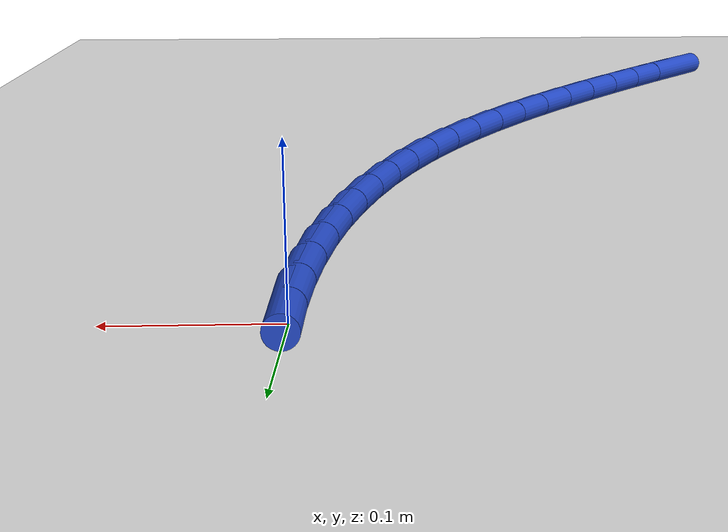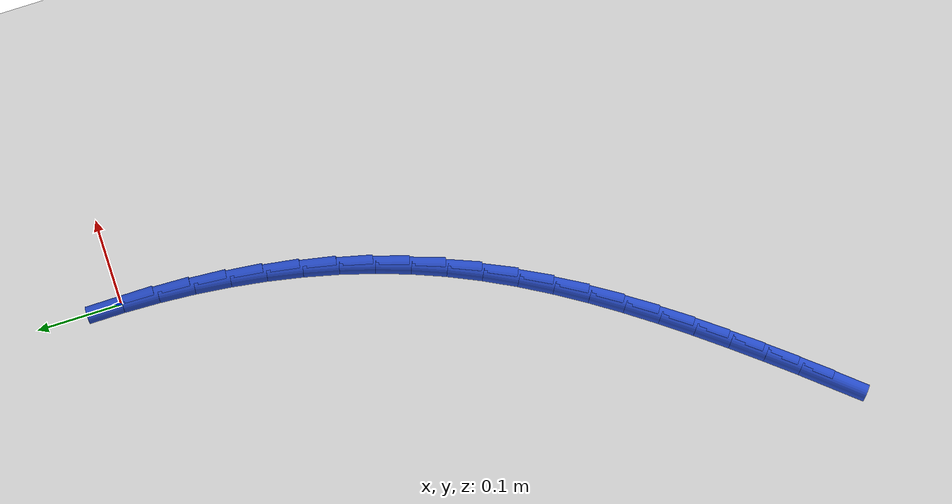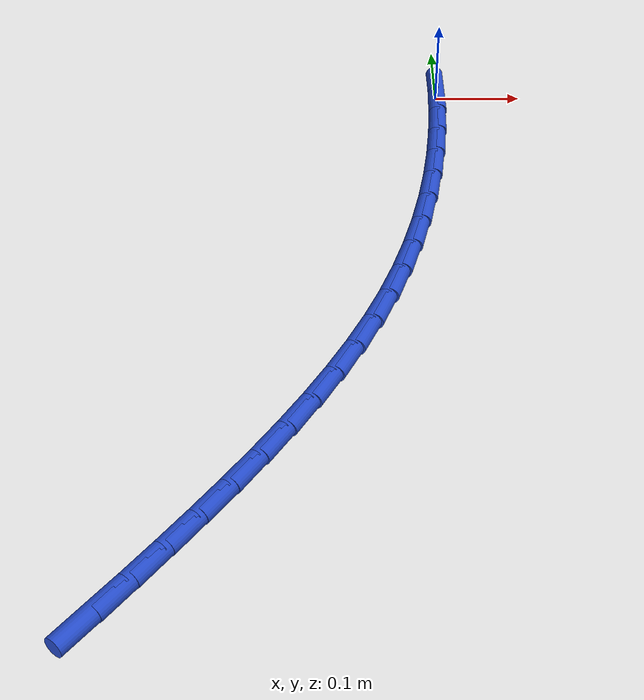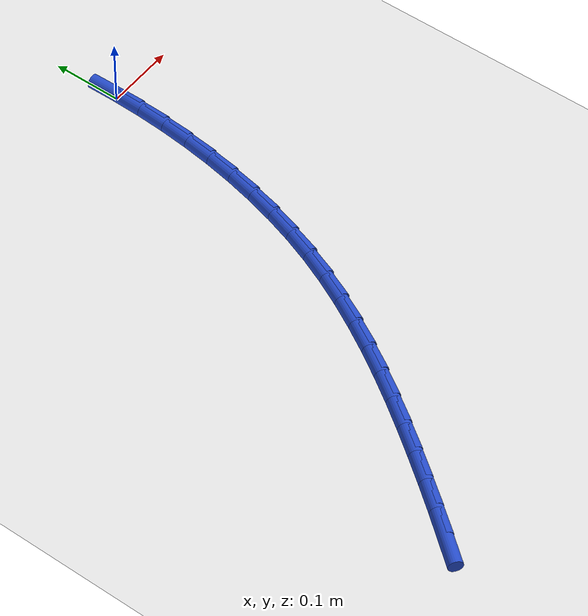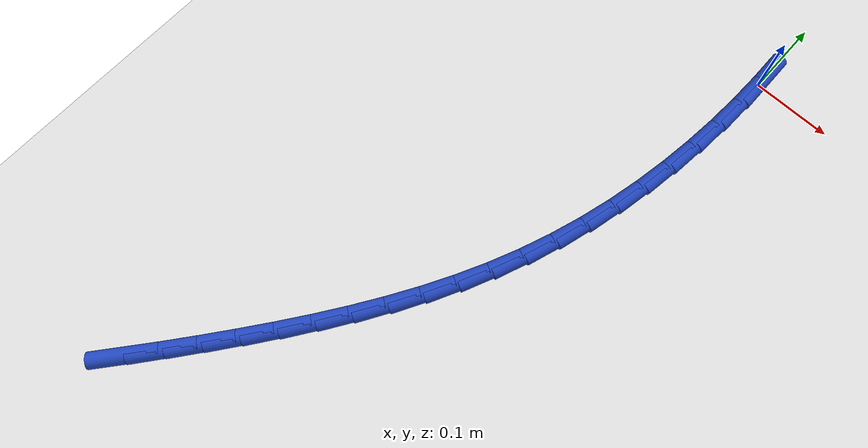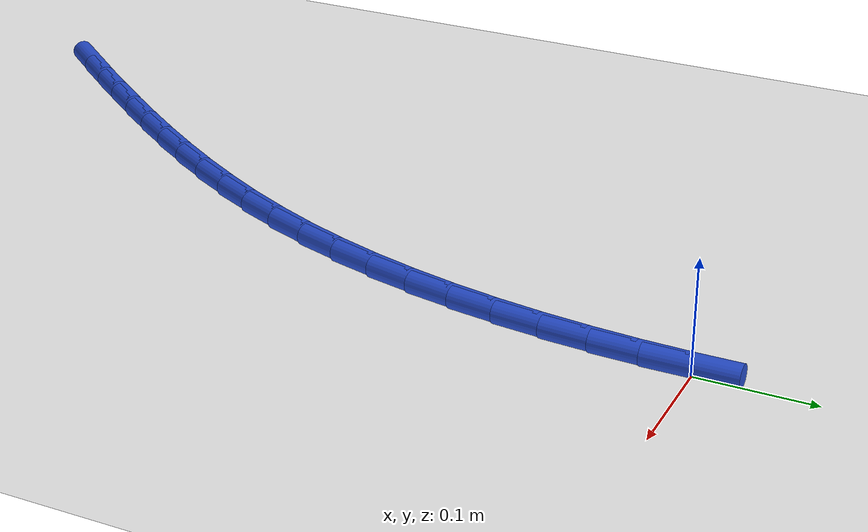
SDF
<sdf version="1.6">
 <world name="default">
  <model name="ground_plane">
   <static>1</static>
   <link name="link">
    <collision name="collision">
     <geometry><plane><normal>0 0 1</normal><size>100 100</size></plane></geometry>
     <surface><friction><ode><mu>100</mu><mu2>50</mu2></ode></friction></surface>
    </collision>
    <visual name="visual">
     <cast_shadows>0</cast_shadows>
     <geometry><plane><normal>0 0 1</normal><size>100 100</size></plane></geometry>
     <material>
      <script><uri>file://media/materials/scripts/gazebo.material</uri><name>Gazebo/WhiteGlow</name></script>
     </material>
    </visual>
   </link>
  </model>
  <model name="line">
   <link name="link_0">
    <pose>-9.540979117872439e-18 2.7755575615628914e-17 0.01 0 1.57 -1.5623964826857273</pose>
    <collision name="collision">
     <geometry><cylinder><radius>0.01</radius><length>0.08</length></cylinder></geometry>
    </collision>
    <visual name="visual">
     <material>
      <script><name>Gazebo/Blue</name><uri>file://media/materials/scripts/gazebo.material</uri></script>
     </material>
     <geometry><cylinder><radius>0.01</radius><length>0.08</length></cylinder></geometry>
    </visual>
   </link>
   <link name="link_150">
    <pose>-0.32178129520156173 -0.7493743706008839 0.01 0 1.57 0.8835898894317481</pose>
    <collision name="collision">
     <geometry><cylinder><radius>0.01</radius><length>0.08</length></cylinder></geometry>
    </collision>
    <visual name="visual">
     <material>
      <script><name>Gazebo/Blue</name><uri>file://media/materials/scripts/gazebo.material</uri></script>
     </material>
     <geometry><cylinder><radius>0.01</radius><length>0.08</length></cylinder></geometry>
    </visual>
   </link>
   <link name="link_151">
    <pose>-0.29471833832471617 -0.7163969220350901 0.01 0 1.57 0.9004460528788547</pose>
    <collision name="collision">
     <geometry><cylinder><radius>0.01</radius><length>0.08</length></cylinder></geometry>
    </collision>
    <visual name="visual">
     <material>
      <script><name>Gazebo/Blue</name><uri>file://media/materials/scripts/gazebo.material</uri></script>
     </material>
     <geometry><cylinder><radius>0.01</radius><length>0.08</length></cylinder></geometry>
    </visual>
   </link>
   <link name="link_152">
    <pose>-0.26823126471768904 -0.6829884251102676 0.01 0 1.57 0.9131514819049315</pose>
    <collision name="collision">
     <geometry><cylinder><radius>0.01</radius><length>0.08</length></cylinder></geometry>
    </collision>
    <visual name="visual">
     <material>
      <script><name>Gazebo/Blue</name><uri>file://media/materials/scripts/gazebo.material</uri></script>
     </material>
     <geometry><cylinder><radius>0.01</radius><length>0.08</length></cylinder></geometry>
    </visual>
   </link>
   <link name="link_153">
    <pose>-0.24226271877513392 -0.649365134818778 0.01 0 1.57 0.9271708702379099</pose>
    <collision name="collision">
     <geometry><cylinder><radius>0.01</radius><length>0.08</length></cylinder></geometry>
    </collision>
    <visual name="visual">
     <material>
      <script><name>Gazebo/Blue</name><uri>file://media/materials/scripts/gazebo.material</uri></script>
     </material>
     <geometry><cylinder><radius>0.01</radius><length>0.08</length></cylinder></geometry>
    </visual>
   </link>
   <link name="link_154">
    <pose>-0.2168955019512213 -0.6155509397030151 0.01 0 1.57 0.9455721928672199</pose>
    <collision name="collision">
     <geometry><cylinder><radius>0.01</radius><length>0.08</length></cylinder></geometry>
    </collision>
    <visual name="visual">
     <material>
      <script><name>Gazebo/Blue</name><uri>file://media/materials/scripts/gazebo.material</uri></script>
     </material>
     <geometry><cylinder><radius>0.01</radius><length>0.08</length></cylinder></geometry>
    </visual>
   </link>
   <link name="link_155">
    <pose>-0.19229007047317329 -0.5814631466385807 0.01 0 1.57 0.9684837760847869</pose>
    <collision name="collision">
     <geometry><cylinder><radius>0.01</radius><length>0.08</length></cylinder></geometry>
    </collision>
    <visual name="visual">
     <material>
      <script><name>Gazebo/Blue</name><uri>file://media/materials/scripts/gazebo.material</uri></script>
     </material>
     <geometry><cylinder><radius>0.01</radius><length>0.08</length></cylinder></geometry>
    </visual>
   </link>
   <link name="link_156">
    <pose>-0.16860770559058816 -0.5470179301526532 0.01 0 1.57 0.9959982139500039</pose>
    <collision name="collision">
     <geometry><cylinder><radius>0.01</radius><length>0.08</length></cylinder></geometry>
    </collision>
    <visual name="visual">
     <material>
      <script><name>Gazebo/Blue</name><uri>file://media/materials/scripts/gazebo.material</uri></script>
     </material>
     <geometry><cylinder><radius>0.01</radius><length>0.08</length></cylinder></geometry>
    </visual>
   </link>
   <link name="link_157">
    <pose>-0.14600968855306376 -0.5121314647724109 0.01 0 1.57 1.0281898206058169</pose>
    <collision name="collision">
     <geometry><cylinder><radius>0.01</radius><length>0.08</length></cylinder></geometry>
    </collision>
    <visual name="visual">
     <material>
      <script><name>Gazebo/Blue</name><uri>file://media/materials/scripts/gazebo.material</uri></script>
     </material>
     <geometry><cylinder><radius>0.01</radius><length>0.08</length></cylinder></geometry>
    </visual>
   </link>
   <link name="link_158">
    <pose>-0.12465730061019774 -0.4767199250250315 0.01 0 1.57 1.0650964619308423</pose>
    <collision name="collision">
     <geometry><cylinder><radius>0.01</radius><length>0.08</length></cylinder></geometry>
    </collision>
    <visual name="visual">
     <material>
      <script><name>Gazebo/Blue</name><uri>file://media/materials/scripts/gazebo.material</uri></script>
     </material>
     <geometry><cylinder><radius>0.01</radius><length>0.08</length></cylinder></geometry>
    </visual>
   </link>
   <link name="link_159">
    <pose>-0.10471182301158896 -0.44069948543769477 0.01 0 1.57 1.106697677753667</pose>
    <collision name="collision">
     <geometry><cylinder><radius>0.01</radius><length>0.08</length></cylinder></geometry>
    </collision>
    <visual name="visual">
     <material>
      <script><name>Gazebo/Blue</name><uri>file://media/materials/scripts/gazebo.material</uri></script>
     </material>
     <geometry><cylinder><radius>0.01</radius><length>0.08</length></cylinder></geometry>
    </visual>
   </link>
   <link name="link_160">
    <pose>-0.08633453700683504 -0.40398632053757855 0.01 0 1.57 1.1528901771721627</pose>
    <collision name="collision">
     <geometry><cylinder><radius>0.01</radius><length>0.08</length></cylinder></geometry>
    </collision>
    <visual name="visual">
     <material>
      <script><name>Gazebo/Blue</name><uri>file://media/materials/scripts/gazebo.material</uri></script>
     </material>
     <geometry><cylinder><radius>0.01</radius><length>0.08</length></cylinder></geometry>
    </visual>
   </link>
   <link name="link_161">
    <pose>-0.06968672384553398 -0.36649660485186103 0.01 0 1.57 1.2027975334644274</pose>
    <collision name="collision">
     <geometry><cylinder><radius>0.01</radius><length>0.08</length></cylinder></geometry>
    </collision>
    <visual name="visual">
     <material>
      <script><name>Gazebo/Blue</name><uri>file://media/materials/scripts/gazebo.material</uri></script>
     </material>
     <geometry><cylinder><radius>0.01</radius><length>0.08</length></cylinder></geometry>
    </visual>
   </link>
   <link name="link_162">
    <pose>-0.054907336047297146 -0.32816460709446305 0.01 0 1.57 1.2521626000800874</pose>
    <collision name="collision">
     <geometry><cylinder><radius>0.01</radius><length>0.08</length></cylinder></geometry>
    </collision>
    <visual name="visual">
     <material>
      <script><name>Gazebo/Blue</name><uri>file://media/materials/scripts/gazebo.material</uri></script>
     </material>
     <geometry><cylinder><radius>0.01</radius><length>0.08</length></cylinder></geometry>
    </visual>
   </link>
   <link name="link_163">
    <pose>-0.041999416191876804 -0.28903473121016443 0.01 0 1.57 1.2994452841814872</pose>
    <collision name="collision">
     <geometry><cylinder><radius>0.01</radius><length>0.08</length></cylinder></geometry>
    </collision>
    <visual name="visual">
     <material>
      <script><name>Gazebo/Blue</name><uri>file://media/materials/scripts/gazebo.material</uri></script>
     </material>
     <geometry><cylinder><radius>0.01</radius><length>0.08</length></cylinder></geometry>
    </visual>
   </link>
   <link name="link_164">
    <pose>-0.03091487028631821 -0.24919281989536857 0.01 0 1.57 1.3446877632683762</pose>
    <collision name="collision">
     <geometry><cylinder><radius>0.01</radius><length>0.08</length></cylinder></geometry>
    </collision>
    <visual name="visual">
     <material>
      <script><name>Gazebo/Blue</name><uri>file://media/materials/scripts/gazebo.material</uri></script>
     </material>
     <geometry><cylinder><radius>0.01</radius><length>0.08</length></cylinder></geometry>
    </visual>
   </link>
   <link name="link_165">
    <pose>-0.02160551176276291 -0.20872479086496518 0.01 0 1.57 1.3879627583094545</pose>
    <collision name="collision">
     <geometry><cylinder><radius>0.01</radius><length>0.08</length></cylinder></geometry>
    </collision>
    <visual name="visual">
     <material>
      <script><name>Gazebo/Blue</name><uri>file://media/materials/scripts/gazebo.material</uri></script>
     </material>
     <geometry><cylinder><radius>0.01</radius><length>0.08</length></cylinder></geometry>
    </visual>
   </link>
   <link name="link_166">
    <pose>-0.014023154053352735 -0.16771656183384456 0.01 0 1.57 1.4293642770637887</pose>
    <collision name="collision">
     <geometry><cylinder><radius>0.01</radius><length>0.08</length></cylinder></geometry>
    </collision>
    <visual name="visual">
     <material>
      <script><name>Gazebo/Blue</name><uri>file://media/materials/scripts/gazebo.material</uri></script>
     </material>
     <geometry><cylinder><radius>0.01</radius><length>0.08</length></cylinder></geometry>
    </visual>
   </link>
   <link name="link_167">
    <pose>-0.008119610590229528 -0.1262540505168974 0.01 0 1.57 1.4690019772848404</pose>
    <collision name="collision">
     <geometry><cylinder><radius>0.01</radius><length>0.08</length></cylinder></geometry>
    </collision>
    <visual name="visual">
     <material>
      <script><name>Gazebo/Blue</name><uri>file://media/materials/scripts/gazebo.material</uri></script>
     </material>
     <geometry><cylinder><radius>0.01</radius><length>0.08</length></cylinder></geometry>
    </visual>
   </link>
   <link name="link_168">
    <pose>-0.00384669480553505 -0.08442317462901325 0.01 0 1.57 1.5069964873486688</pose>
    <collision name="collision">
     <geometry><cylinder><radius>0.01</radius><length>0.08</length></cylinder></geometry>
    </collision>
    <visual name="visual">
     <material>
      <script><name>Gazebo/Blue</name><uri>file://media/materials/scripts/gazebo.material</uri></script>
     </material>
     <geometry><cylinder><radius>0.01</radius><length>0.08</length></cylinder></geometry>
    </visual>
   </link>
   <link name="link_169">
    <pose>-0.0011562201314112928 -0.04230985188508418 0.01 0 1.57 1.5434756818097373</pose>
    <collision name="collision">
     <geometry><cylinder><radius>0.01</radius><length>0.08</length></cylinder></geometry>
    </collision>
    <visual name="visual">
     <material>
      <script><name>Gazebo/Blue</name><uri>file://media/materials/scripts/gazebo.material</uri></script>
     </material>
     <geometry><cylinder><radius>0.01</radius><length>0.08</length></cylinder></geometry>
    </visual>
   </link>
  </model>
 </world>
</sdf>
